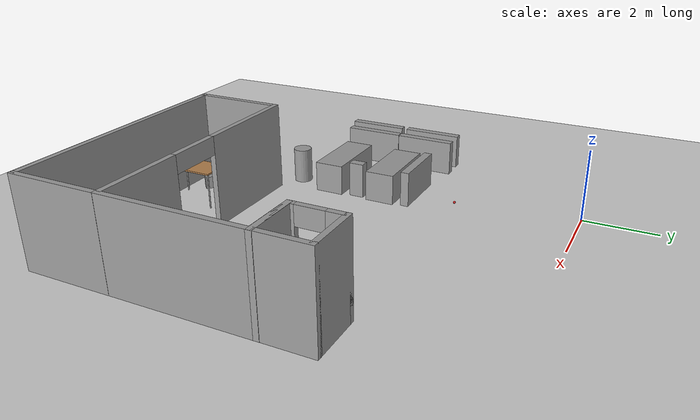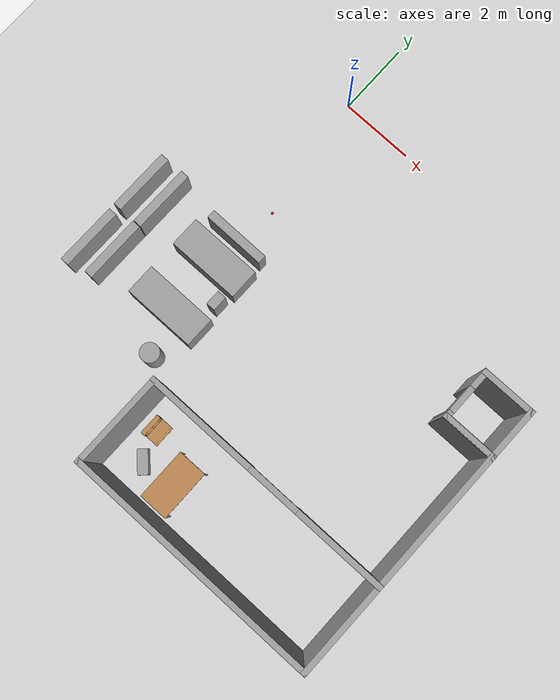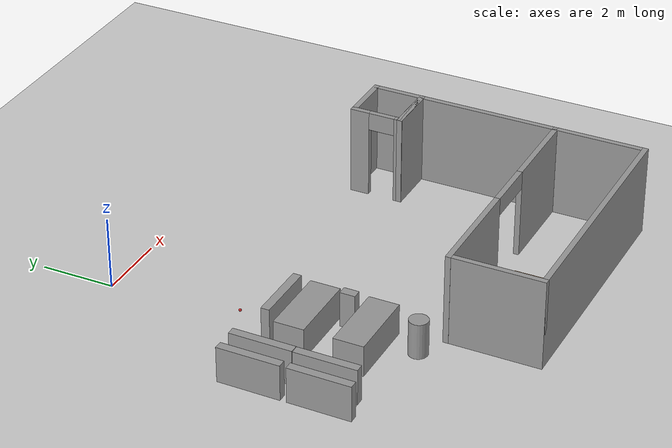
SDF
<sdf version="1.6">
 <world name="default">
  <model name="ground_plane">
   <static>1</static>
   <link name="link">
    <collision name="collision">
     <geometry><plane><normal>0 0 1</normal><size>100 100</size></plane></geometry>
     <surface><friction><ode><mu>100</mu><mu2>50</mu2></ode></friction></surface>
    </collision>
    <visual name="visual">
     <cast_shadows>0</cast_shadows>
     <geometry><plane><normal>0 0 1</normal><size>100 100</size></plane></geometry>
     <material>
      <script><uri>file://media/materials/scripts/gazebo.material</uri><name>Gazebo/Grey</name></script>
     </material>
    </visual>
   </link>
  </model>
  <model name="cma_parede_L">
   <pose>4.97628 -6.69992 0 0 -0 0</pose>
   <link name="Wall_0">
    <pose>0 -1.925 0 0 -0 0</pose>
    <visual name="Wall_0_Visual_0">
     <pose>-1.985 0 1.25 0 -0 0</pose>
     <geometry><box><size>3.03 0.15 2.5</size></box></geometry>
     <material>
      <script><uri>file://media/materials/scripts/gazebo.material</uri><name>Gazebo/Grey</name></script>
      <ambient>1 1 1 1</ambient>
     </material>
    </visual>
    <collision name="Wall_0_Collision_0">
     <geometry><box><size>3.03 0.15 2.5</size></box></geometry>
     <pose>-1.985 0 1.25 0 -0 0</pose>
    </collision>
    <visual name="Wall_0_Visual_1">
     <pose>2.24 0 1.25 0 -0 0</pose>
     <geometry><box><size>2.52 0.15 2.5</size></box></geometry>
     <material>
      <script><uri>file://media/materials/scripts/gazebo.material</uri><name>Gazebo/Grey</name></script>
      <ambient>1 1 1 1</ambient>
     </material>
    </visual>
    <collision name="Wall_0_Collision_1">
     <geometry><box><size>2.52 0.15 2.5</size></box></geometry>
     <pose>2.24 0 1.25 0 -0 0</pose>
    </collision>
    <visual name="Wall_0_Visual_2">
     <pose>0.255 0 2.25 0 -0 0</pose>
     <geometry><box><size>1.45 0.15 0.5</size></box></geometry>
     <material>
      <script><uri>file://media/materials/scripts/gazebo.material</uri><name>Gazebo/Grey</name></script>
      <ambient>1 1 1 1</ambient>
     </material>
    </visual>
    <collision name="Wall_0_Collision_2">
     <geometry><box><size>1.45 0.15 0.5</size></box></geometry>
     <pose>0.255 0 2.25 0 -0 0</pose>
    </collision>
   </link>
   <link name="Wall_1">
    <collision name="Wall_1_Collision">
     <geometry><box><size>4 0.15 2.5</size></box></geometry>
     <pose>0 0 1.25 0 -0 0</pose>
    </collision>
    <visual name="Wall_1_Visual">
     <pose>0 0 1.25 0 -0 0</pose>
     <geometry><box><size>4 0.15 2.5</size></box></geometry>
     <material>
      <script><uri>file://media/materials/scripts/gazebo.material</uri><name>Gazebo/Grey</name></script>
      <ambient>1 1 1 1</ambient>
     </material>
    </visual>
    <pose>3.425 0 0 0 -0 1.5708</pose>
   </link>
   <link name="Wall_2">
    <collision name="Wall_2_Collision">
     <geometry><box><size>1.5 0.15 2.5</size></box></geometry>
     <pose>0 0 1.25 0 -0 0</pose>
    </collision>
    <visual name="Wall_2_Visual">
     <pose>0 0 1.25 0 -0 0</pose>
     <geometry><box><size>1.5 0.15 2.5</size></box></geometry>
     <material>
      <script><uri>file://media/materials/scripts/gazebo.material</uri><name>Gazebo/Grey</name></script>
      <ambient>1 1 1 1</ambient>
     </material>
    </visual>
    <pose>2.75 1.925 0 0 -0 3.14159</pose>
   </link>
   <static>1</static>
  </model>
  <model name="cma_lavabo">
   <pose>7.72297 -4.09302 0 0 -0 0</pose>
   <link name="Wall_4">
    <pose>-0.675 0 0 0 -0 1.5708</pose>
    <visual name="Wall_4_Visual_0">
     <pose>-0.635 0 1.25 0 -0 0</pose>
     <geometry><box><size>0.23 0.15 2.5</size></box></geometry>
     <material>
      <script><uri>file://media/materials/scripts/gazebo.material</uri><name>Gazebo/Grey</name></script>
      <ambient>1 1 1 1</ambient>
     </material>
    </visual>
    <collision name="Wall_4_Collision_0">
     <geometry><box><size>0.23 0.15 2.5</size></box></geometry>
     <pose>-0.635 0 1.25 0 -0 0</pose>
    </collision>
    <visual name="Wall_4_Visual_1">
     <pose>0.48 0 1.25 0 -0 0</pose>
     <geometry><box><size>0.54 0.15 2.5</size></box></geometry>
     <material>
      <script><uri>file://media/materials/scripts/gazebo.material</uri><name>Gazebo/Grey</name></script>
      <ambient>1 1 1 1</ambient>
     </material>
    </visual>
    <collision name="Wall_4_Collision_1">
     <geometry><box><size>0.54 0.15 2.5</size></box></geometry>
     <pose>0.48 0 1.25 0 -0 0</pose>
    </collision>
    <visual name="Wall_4_Visual_2">
     <pose>-0.155 0 2.25 0 -0 0</pose>
     <geometry><box><size>0.73 0.15 0.5</size></box></geometry>
     <material>
      <script><uri>file://media/materials/scripts/gazebo.material</uri><name>Gazebo/Grey</name></script>
      <ambient>1 1 1 1</ambient>
     </material>
    </visual>
    <collision name="Wall_4_Collision_2">
     <geometry><box><size>0.73 0.15 0.5</size></box></geometry>
     <pose>-0.155 0 2.25 0 -0 0</pose>
    </collision>
   </link>
   <link name="Wall_5">
    <collision name="Wall_5_Collision">
     <geometry><box><size>1.5 0.15 2.5</size></box></geometry>
     <pose>0 0 1.25 0 -0 0</pose>
    </collision>
    <visual name="Wall_5_Visual">
     <pose>0 0 1.25 0 -0 0</pose>
     <geometry><box><size>1.5 0.15 2.5</size></box></geometry>
     <material>
      <script><uri>file://media/materials/scripts/gazebo.material</uri><name>Gazebo/Grey</name></script>
      <ambient>1 1 1 1</ambient>
     </material>
    </visual>
    <pose>0 0.675 0 0 -0 0</pose>
   </link>
   <link name="Wall_6">
    <collision name="Wall_6_Collision">
     <geometry><box><size>1.5 0.15 2.5</size></box></geometry>
     <pose>0 0 1.25 0 -0 0</pose>
    </collision>
    <visual name="Wall_6_Visual">
     <pose>0 0 1.25 0 -0 0</pose>
     <geometry><box><size>1.5 0.15 2.5</size></box></geometry>
     <material>
      <script><uri>file://media/materials/scripts/gazebo.material</uri><name>Gazebo/Grey</name></script>
      <ambient>1 1 1 1</ambient>
     </material>
    </visual>
    <pose>0.675 0 0 0 0 -1.5708</pose>
   </link>
   <link name="Wall_7">
    <collision name="Wall_7_Collision">
     <geometry><box><size>1.5 0.15 2.5</size></box></geometry>
     <pose>0 0 1.25 0 -0 0</pose>
    </collision>
    <visual name="Wall_7_Visual">
     <pose>0 0 1.25 0 -0 0</pose>
     <geometry><box><size>1.5 0.15 2.5</size></box></geometry>
     <material>
      <script><uri>file://media/materials/scripts/gazebo.material</uri><name>Gazebo/Grey</name></script>
      <ambient>1 1 1 1</ambient>
     </material>
    </visual>
    <pose>0 -0.675 0 0 -0 3.14159</pose>
   </link>
   <static>1</static>
  </model>
  <model name="cma_U">
   <pose>4.97895 -9.92408 0 0 -0 0</pose>
   <link name="Wall_16">
    <collision name="Wall_16_Collision">
     <geometry><box><size>2.5 0.15 2.5</size></box></geometry>
     <pose>0 0 1.25 0 -0 0</pose>
    </collision>
    <visual name="Wall_16_Visual">
     <pose>0 0 1.25 0 -0 0</pose>
     <geometry><box><size>2.5 0.15 2.5</size></box></geometry>
     <material>
      <script><uri>file://media/materials/scripts/gazebo.material</uri><name>Gazebo/Grey</name></script>
      <ambient>1 1 1 1</ambient>
     </material>
    </visual>
    <pose>-3.425 0 0 0 0 -1.5708</pose>
   </link>
   <link name="Wall_17">
    <collision name="Wall_17_Collision">
     <geometry><box><size>7 0.15 2.5</size></box></geometry>
     <pose>0 0 1.25 0 -0 0</pose>
    </collision>
    <visual name="Wall_17_Visual">
     <pose>0 0 1.25 0 -0 0</pose>
     <geometry><box><size>7 0.15 2.5</size></box></geometry>
     <material>
      <script><uri>file://media/materials/scripts/gazebo.material</uri><name>Gazebo/Grey</name></script>
      <ambient>1 1 1 1</ambient>
     </material>
    </visual>
    <pose>0 -1.175 0 0 -0 0</pose>
   </link>
   <link name="Wall_18">
    <collision name="Wall_18_Collision">
     <geometry><box><size>2.5 0.15 2.5</size></box></geometry>
     <pose>0 0 1.25 0 -0 0</pose>
    </collision>
    <visual name="Wall_18_Visual">
     <pose>0 0 1.25 0 -0 0</pose>
     <geometry><box><size>2.5 0.15 2.5</size></box></geometry>
     <material>
      <script><uri>file://media/materials/scripts/gazebo.material</uri><name>Gazebo/Grey</name></script>
      <ambient>1 1 1 1</ambient>
     </material>
    </visual>
    <pose>3.425 0 0 0 -0 1.5708</pose>
   </link>
   <static>1</static>
  </model>
  <model name="cma_armario_2">
   <link name="link_0">
    <pose>1.32157 0.885178 0.5 0 -0 0</pose>
    <inertial>
     <mass>0.402376</mass>
     <inertia>
      <ixx>0.0353686</ixx>
      <ixy>0</ixy>
      <ixz>0</ixz>
      <iyy>0.132616</iyy>
      <iyz>0</iyz>
      <izz>0.100922</izz>
     </inertia>
    </inertial>
    <visual name="visual">
     <geometry><box><size>1.71877 0.234069 1</size></box></geometry>
     <material>
      <lighting>1</lighting>
      <script><uri>file://media/materials/scripts/gazebo.material</uri><name>Gazebo/Grey</name></script>
      <ambient>0.3 0.3 0.3 1</ambient>
      <diffuse>0.7 0.7 0.7 1</diffuse>
      <specular>0.01 0.01 0.01 1</specular>
      <emissive>0 0 0 1</emissive>
     </material>
    </visual>
    <collision name="collision">
     <geometry><box><size>1.71877 0.234069 1</size></box></geometry>
     <surface>
      <friction>
       <ode><mu>1</mu><mu2>1</mu2><fdir1>0 0 0</fdir1><slip1>0</slip1><slip2>0</slip2></ode>
       <torsional>
        <coefficient>1</coefficient>
        <patch_radius>0</patch_radius>
        <surface_radius>0</surface_radius>
        <use_patch_radius>1</use_patch_radius>
        <ode><slip>0</slip></ode>
       </torsional>
      </friction>
      <bounce><restitution_coefficient>0</restitution_coefficient><threshold>1e+06</threshold></bounce>
      <contact>
       <collide_without_contact>0</collide_without_contact>
       <collide_without_contact_bitmask>1</collide_without_contact_bitmask>
       <collide_bitmask>1</collide_bitmask>
       <ode>
        <soft_cfm>0</soft_cfm>
        <soft_erp>0.2</soft_erp>
        <kp>1e+13</kp>
        <kd>1</kd>
        <max_vel>0.01</max_vel>
        <min_depth>0</min_depth>
       </ode>
       <bullet>
        <split_impulse>1</split_impulse>
        <split_impulse_penetration_threshold>-0.01</split_impulse_penetration_threshold>
        <soft_cfm>0</soft_cfm>
        <soft_erp>0.2</soft_erp>
        <kp>1e+13</kp>
        <kd>1</kd>
       </bullet>
      </contact>
     </surface>
    </collision>
   </link>
   <static>0</static>
   <pose>-1.43698 -6.56212 -2e-06 2e-06 -0 1.56474</pose>
  </model>
  <model name="cma_armario_2_clone">
   <link name="link_0">
    <pose>1.32157 0.885178 0.5 0 -0 0</pose>
    <inertial>
     <mass>0.402376</mass>
     <inertia>
      <ixx>0.0353686</ixx>
      <ixy>0</ixy>
      <ixz>0</ixz>
      <iyy>0.132616</iyy>
      <iyz>0</iyz>
      <izz>0.100922</izz>
     </inertia>
    </inertial>
    <visual name="visual">
     <geometry><box><size>1.71877 0.234069 1</size></box></geometry>
     <material>
      <lighting>1</lighting>
      <script><uri>file://media/materials/scripts/gazebo.material</uri><name>Gazebo/Grey</name></script>
      <ambient>0.3 0.3 0.3 1</ambient>
      <diffuse>0.7 0.7 0.7 1</diffuse>
      <specular>0.01 0.01 0.01 1</specular>
      <emissive>0 0 0 1</emissive>
     </material>
    </visual>
    <collision name="collision">
     <geometry><box><size>1.71877 0.234069 1</size></box></geometry>
     <surface>
      <friction>
       <ode><mu>1</mu><mu2>1</mu2><fdir1>0 0 0</fdir1><slip1>0</slip1><slip2>0</slip2></ode>
       <torsional>
        <coefficient>1</coefficient>
        <patch_radius>0</patch_radius>
        <surface_radius>0</surface_radius>
        <use_patch_radius>1</use_patch_radius>
        <ode><slip>0</slip></ode>
       </torsional>
      </friction>
      <bounce><restitution_coefficient>0</restitution_coefficient><threshold>1e+06</threshold></bounce>
      <contact>
       <collide_without_contact>0</collide_without_contact>
       <collide_without_contact_bitmask>1</collide_without_contact_bitmask>
       <collide_bitmask>1</collide_bitmask>
       <ode>
        <soft_cfm>0</soft_cfm>
        <soft_erp>0.2</soft_erp>
        <kp>1e+13</kp>
        <kd>1</kd>
        <max_vel>0.01</max_vel>
        <min_depth>0</min_depth>
       </ode>
       <bullet>
        <split_impulse>1</split_impulse>
        <split_impulse_penetration_threshold>-0.01</split_impulse_penetration_threshold>
        <soft_cfm>0</soft_cfm>
        <soft_erp>0.2</soft_erp>
        <kp>1e+13</kp>
        <kd>1</kd>
       </bullet>
      </contact>
     </surface>
    </collision>
   </link>
   <static>0</static>
   <pose>-1.44353 -8.44504 -2e-06 2e-06 -0 1.56474</pose>
  </model>
  <model name="cma_cama_s">
   <link name="link_0">
    <pose>-0 2e-06 0 0 -0 0</pose>
    <inertial>
     <mass>1.44546</mass>
     <inertia>
      <ixx>0.173816</ixx>
      <ixy>0</ixy>
      <ixz>0</ixz>
      <iyy>0.575223</iyy>
      <iyz>0</iyz>
      <izz>0.56746</izz>
     </inertia>
    </inertial>
    <visual name="visual">
     <geometry><box><size>2.0054 0.830227 0.868163</size></box></geometry>
     <material>
      <lighting>1</lighting>
      <script><uri>file://media/materials/scripts/gazebo.material</uri><name>Gazebo/Grey</name></script>
      <ambient>0.3 0.3 0.3 1</ambient>
      <diffuse>0.7 0.7 0.7 1</diffuse>
      <specular>0.01 0.01 0.01 1</specular>
      <emissive>0 0 0 1</emissive>
     </material>
    </visual>
    <collision name="collision">
     <geometry><box><size>2.0054 0.830227 0.868163</size></box></geometry>
     <surface>
      <friction>
       <ode><mu>1</mu><mu2>1</mu2><fdir1>0 0 0</fdir1><slip1>0</slip1><slip2>0</slip2></ode>
       <torsional>
        <coefficient>1</coefficient>
        <patch_radius>0</patch_radius>
        <surface_radius>0</surface_radius>
        <use_patch_radius>1</use_patch_radius>
        <ode><slip>0</slip></ode>
       </torsional>
      </friction>
      <bounce><restitution_coefficient>0</restitution_coefficient><threshold>1e+06</threshold></bounce>
      <contact>
       <collide_without_contact>0</collide_without_contact>
       <collide_without_contact_bitmask>1</collide_without_contact_bitmask>
       <collide_bitmask>1</collide_bitmask>
       <ode>
        <soft_cfm>0</soft_cfm>
        <soft_erp>0.2</soft_erp>
        <kp>1e+13</kp>
        <kd>1</kd>
        <max_vel>0.01</max_vel>
        <min_depth>0</min_depth>
       </ode>
       <bullet>
        <split_impulse>1</split_impulse>
        <split_impulse_penetration_threshold>-0.01</split_impulse_penetration_threshold>
        <soft_cfm>0</soft_cfm>
        <soft_erp>0.2</soft_erp>
        <kp>1e+13</kp>
        <kd>1</kd>
       </bullet>
      </contact>
     </surface>
    </collision>
   </link>
   <static>0</static>
   <pose>0.315061 -5.42015 0.434078 1e-06 -4e-06 -2e-06</pose>
  </model>
  <model name="cma_cama_s_0">
   <link name="link_0">
    <pose>-0 2e-06 0 0 -0 0</pose>
    <inertial>
     <mass>1.44546</mass>
     <inertia>
      <ixx>0.173816</ixx>
      <ixy>0</ixy>
      <ixz>0</ixz>
      <iyy>0.575223</iyy>
      <iyz>0</iyz>
      <izz>0.56746</izz>
     </inertia>
    </inertial>
    <visual name="visual">
     <geometry><box><size>2.0054 0.830227 0.868163</size></box></geometry>
     <material>
      <lighting>1</lighting>
      <script><uri>file://media/materials/scripts/gazebo.material</uri><name>Gazebo/Grey</name></script>
      <ambient>0.3 0.3 0.3 1</ambient>
      <diffuse>0.7 0.7 0.7 1</diffuse>
      <specular>0.01 0.01 0.01 1</specular>
      <emissive>0 0 0 1</emissive>
     </material>
    </visual>
    <collision name="collision">
     <geometry><box><size>2.0054 0.830227 0.868163</size></box></geometry>
     <surface>
      <friction>
       <ode><mu>1</mu><mu2>1</mu2><fdir1>0 0 0</fdir1><slip1>0</slip1><slip2>0</slip2></ode>
       <torsional>
        <coefficient>1</coefficient>
        <patch_radius>0</patch_radius>
        <surface_radius>0</surface_radius>
        <use_patch_radius>1</use_patch_radius>
        <ode><slip>0</slip></ode>
       </torsional>
      </friction>
      <bounce><restitution_coefficient>0</restitution_coefficient><threshold>1e+06</threshold></bounce>
      <contact>
       <collide_without_contact>0</collide_without_contact>
       <collide_without_contact_bitmask>1</collide_without_contact_bitmask>
       <collide_bitmask>1</collide_bitmask>
       <ode>
        <soft_cfm>0</soft_cfm>
        <soft_erp>0.2</soft_erp>
        <kp>1e+13</kp>
        <kd>1</kd>
        <max_vel>0.01</max_vel>
        <min_depth>0</min_depth>
       </ode>
       <bullet>
        <split_impulse>1</split_impulse>
        <split_impulse_penetration_threshold>-0.01</split_impulse_penetration_threshold>
        <soft_cfm>0</soft_cfm>
        <soft_erp>0.2</soft_erp>
        <kp>1e+13</kp>
        <kd>1</kd>
       </bullet>
      </contact>
     </surface>
    </collision>
   </link>
   <static>0</static>
   <pose>0.314449 -7.03078 0.434078 -1e-06 4e-06 0</pose>
  </model>
  <model name="cma_picador">
   <link name="link_2">
    <pose>-0.7258 -1.69104 0 0 -0 0</pose>
    <inertial>
     <mass>0.104732</mass>
     <inertia>
      <ixx>0.00927906</ixx>
      <ixy>0</ixy>
      <ixz>0</ixz>
      <iyy>0.010243</iyy>
      <iyz>0</iyz>
      <izz>0.00206672</izz>
     </inertia>
    </inertial>
    <visual name="visual">
     <geometry><box><size>0.416688 0.25134 1</size></box></geometry>
     <material>
      <lighting>1</lighting>
      <script><uri>file://media/materials/scripts/gazebo.material</uri><name>Gazebo/Grey</name></script>
      <ambient>0.3 0.3 0.3 1</ambient>
      <diffuse>0.7 0.7 0.7 1</diffuse>
      <specular>0.01 0.01 0.01 1</specular>
      <emissive>0 0 0 1</emissive>
     </material>
    </visual>
    <collision name="collision">
     <geometry><box><size>0.416688 0.25134 1</size></box></geometry>
     <surface>
      <friction>
       <ode><mu>1</mu><mu2>1</mu2><fdir1>0 0 0</fdir1><slip1>0</slip1><slip2>0</slip2></ode>
       <torsional>
        <coefficient>1</coefficient>
        <patch_radius>0</patch_radius>
        <surface_radius>0</surface_radius>
        <use_patch_radius>1</use_patch_radius>
        <ode><slip>0</slip></ode>
       </torsional>
      </friction>
      <bounce><restitution_coefficient>0</restitution_coefficient><threshold>1e+06</threshold></bounce>
      <contact>
       <collide_without_contact>0</collide_without_contact>
       <collide_without_contact_bitmask>1</collide_without_contact_bitmask>
       <collide_bitmask>1</collide_bitmask>
       <ode>
        <soft_cfm>0</soft_cfm>
        <soft_erp>0.2</soft_erp>
        <kp>1e+13</kp>
        <kd>1</kd>
        <max_vel>0.01</max_vel>
        <min_depth>0</min_depth>
       </ode>
       <bullet>
        <split_impulse>1</split_impulse>
        <split_impulse_penetration_threshold>-0.01</split_impulse_penetration_threshold>
        <soft_cfm>0</soft_cfm>
        <soft_erp>0.2</soft_erp>
        <kp>1e+13</kp>
        <kd>1</kd>
       </bullet>
      </contact>
     </surface>
    </collision>
   </link>
   <static>0</static>
   <pose>-0.5856 -5.45534 0.500004 1e-06 -2e-06 1.56596</pose>
  </model>
  <model name="cma_armario_3">
   <link name="link_0">
    <pose>1.32157 0.885178 0.5 0 -0 0</pose>
    <inertial>
     <mass>0.402376</mass>
     <inertia>
      <ixx>0.0353686</ixx>
      <ixy>0</ixy>
      <ixz>0</ixz>
      <iyy>0.132616</iyy>
      <iyz>0</iyz>
      <izz>0.100922</izz>
     </inertia>
    </inertial>
    <visual name="visual">
     <geometry><box><size>1.71877 0.234069 1</size></box></geometry>
     <material>
      <lighting>1</lighting>
      <script><uri>file://media/materials/scripts/gazebo.material</uri><name>Gazebo/Grey</name></script>
      <ambient>0.3 0.3 0.3 1</ambient>
      <diffuse>0.7 0.7 0.7 1</diffuse>
      <specular>0.01 0.01 0.01 1</specular>
      <emissive>0 0 0 1</emissive>
     </material>
    </visual>
    <collision name="collision">
     <geometry><box><size>1.71877 0.234069 1</size></box></geometry>
     <surface>
      <friction>
       <ode><mu>1</mu><mu2>1</mu2><fdir1>0 0 0</fdir1><slip1>0</slip1><slip2>0</slip2></ode>
       <torsional>
        <coefficient>1</coefficient>
        <patch_radius>0</patch_radius>
        <surface_radius>0</surface_radius>
        <use_patch_radius>1</use_patch_radius>
        <ode><slip>0</slip></ode>
       </torsional>
      </friction>
      <bounce><restitution_coefficient>0</restitution_coefficient><threshold>1e+06</threshold></bounce>
      <contact>
       <collide_without_contact>0</collide_without_contact>
       <collide_without_contact_bitmask>1</collide_without_contact_bitmask>
       <collide_bitmask>1</collide_bitmask>
       <ode>
        <soft_cfm>0</soft_cfm>
        <soft_erp>0.2</soft_erp>
        <kp>1e+13</kp>
        <kd>1</kd>
        <max_vel>0.01</max_vel>
        <min_depth>0</min_depth>
       </ode>
       <bullet>
        <split_impulse>1</split_impulse>
        <split_impulse_penetration_threshold>-0.01</split_impulse_penetration_threshold>
        <soft_cfm>0</soft_cfm>
        <soft_erp>0.2</soft_erp>
        <kp>1e+13</kp>
        <kd>1</kd>
       </bullet>
      </contact>
     </surface>
    </collision>
   </link>
   <static>0</static>
   <pose>-0.943052 -5.55404 0 0 0 -0.004297</pose>
  </model>
  <model name="cma_armario_4">
   <link name="link_0">
    <pose>1.32157 0.885178 0.5 0 -0 0</pose>
    <inertial>
     <mass>0.402376</mass>
     <inertia>
      <ixx>0.0353686</ixx>
      <ixy>0</ixy>
      <ixz>0</ixz>
      <iyy>0.132616</iyy>
      <iyz>0</iyz>
      <izz>0.100922</izz>
     </inertia>
    </inertial>
    <visual name="visual">
     <geometry><box><size>1.71877 0.234069 1</size></box></geometry>
     <material>
      <lighting>1</lighting>
      <script><uri>file://media/materials/scripts/gazebo.material</uri><name>Gazebo/Grey</name></script>
      <ambient>0.3 0.3 0.3 1</ambient>
      <diffuse>0.7 0.7 0.7 1</diffuse>
      <specular>0.01 0.01 0.01 1</specular>
      <emissive>0 0 0 1</emissive>
     </material>
    </visual>
    <collision name="collision">
     <geometry><box><size>1.71877 0.234069 1</size></box></geometry>
     <surface>
      <friction>
       <ode><mu>1</mu><mu2>1</mu2><fdir1>0 0 0</fdir1><slip1>0</slip1><slip2>0</slip2></ode>
       <torsional>
        <coefficient>1</coefficient>
        <patch_radius>0</patch_radius>
        <surface_radius>0</surface_radius>
        <use_patch_radius>1</use_patch_radius>
        <ode><slip>0</slip></ode>
       </torsional>
      </friction>
      <bounce><restitution_coefficient>0</restitution_coefficient><threshold>1e+06</threshold></bounce>
      <contact>
       <collide_without_contact>0</collide_without_contact>
       <collide_without_contact_bitmask>1</collide_without_contact_bitmask>
       <collide_bitmask>1</collide_bitmask>
       <ode>
        <soft_cfm>0</soft_cfm>
        <soft_erp>0.2</soft_erp>
        <kp>1e+13</kp>
        <kd>1</kd>
        <max_vel>0.01</max_vel>
        <min_depth>0</min_depth>
       </ode>
       <bullet>
        <split_impulse>1</split_impulse>
        <split_impulse_penetration_threshold>-0.01</split_impulse_penetration_threshold>
        <soft_cfm>0</soft_cfm>
        <soft_erp>0.2</soft_erp>
        <kp>1e+13</kp>
        <kd>1</kd>
       </bullet>
      </contact>
     </surface>
    </collision>
   </link>
   <static>0</static>
   <pose>-0.77959 -6.54594 -2e-06 2e-06 -0 1.56412</pose>
  </model>
  <model name="cma_armario_5">
   <link name="link_0">
    <pose>1.32157 0.885178 0.5 0 -0 0</pose>
    <inertial>
     <mass>0.402376</mass>
     <inertia>
      <ixx>0.0353686</ixx>
      <ixy>0</ixy>
      <ixz>0</ixz>
      <iyy>0.132616</iyy>
      <iyz>0</iyz>
      <izz>0.100922</izz>
     </inertia>
    </inertial>
    <visual name="visual">
     <geometry><box><size>1.71877 0.234069 1</size></box></geometry>
     <material>
      <lighting>1</lighting>
      <script><uri>file://media/materials/scripts/gazebo.material</uri><name>Gazebo/Grey</name></script>
      <ambient>0.3 0.3 0.3 1</ambient>
      <diffuse>0.7 0.7 0.7 1</diffuse>
      <specular>0.01 0.01 0.01 1</specular>
      <emissive>0 0 0 1</emissive>
     </material>
    </visual>
    <collision name="collision">
     <geometry><box><size>1.71877 0.234069 1</size></box></geometry>
     <surface>
      <friction>
       <ode><mu>1</mu><mu2>1</mu2><fdir1>0 0 0</fdir1><slip1>0</slip1><slip2>0</slip2></ode>
       <torsional>
        <coefficient>1</coefficient>
        <patch_radius>0</patch_radius>
        <surface_radius>0</surface_radius>
        <use_patch_radius>1</use_patch_radius>
        <ode><slip>0</slip></ode>
       </torsional>
      </friction>
      <bounce><restitution_coefficient>0</restitution_coefficient><threshold>1e+06</threshold></bounce>
      <contact>
       <collide_without_contact>0</collide_without_contact>
       <collide_without_contact_bitmask>1</collide_without_contact_bitmask>
       <collide_bitmask>1</collide_bitmask>
       <ode>
        <soft_cfm>0</soft_cfm>
        <soft_erp>0.2</soft_erp>
        <kp>1e+13</kp>
        <kd>1</kd>
        <max_vel>0.01</max_vel>
        <min_depth>0</min_depth>
       </ode>
       <bullet>
        <split_impulse>1</split_impulse>
        <split_impulse_penetration_threshold>-0.01</split_impulse_penetration_threshold>
        <soft_cfm>0</soft_cfm>
        <soft_erp>0.2</soft_erp>
        <kp>1e+13</kp>
        <kd>1</kd>
       </bullet>
      </contact>
     </surface>
    </collision>
   </link>
   <static>0</static>
   <pose>-0.788108 -8.27707 -2e-06 2e-06 -0 1.56877</pose>
  </model>
  <model name="cma_cesto_0">
   <link name="link_1">
    <pose>-0.329659 -1.55494 0 0 -0 0</pose>
    <inertial>
     <mass>0.267897</mass>
     <inertia>
      <ixx>0.0268102</ixx>
      <ixy>0</ixy>
      <ixz>0</ixz>
      <iyy>0.0268102</iyy>
      <iyz>0</iyz>
      <izz>0.00897111</izz>
     </inertia>
    </inertial>
    <visual name="visual">
     <geometry><cylinder><radius>0.258792</radius><length>1</length></cylinder></geometry>
     <material>
      <lighting>1</lighting>
      <script><uri>file://media/materials/scripts/gazebo.material</uri><name>Gazebo/Grey</name></script>
      <ambient>0.3 0.3 0.3 1</ambient>
      <diffuse>0.7 0.7 0.7 1</diffuse>
      <specular>0.01 0.01 0.01 1</specular>
      <emissive>0 0 0 1</emissive>
     </material>
    </visual>
    <collision name="collision">
     <geometry><cylinder><radius>0.258792</radius><length>1</length></cylinder></geometry>
     <surface>
      <friction>
       <ode><mu>1</mu><mu2>1</mu2><fdir1>0 0 0</fdir1><slip1>0</slip1><slip2>0</slip2></ode>
       <torsional>
        <coefficient>1</coefficient>
        <patch_radius>0</patch_radius>
        <surface_radius>0</surface_radius>
        <use_patch_radius>1</use_patch_radius>
        <ode><slip>0</slip></ode>
       </torsional>
      </friction>
      <bounce><restitution_coefficient>0</restitution_coefficient><threshold>1e+06</threshold></bounce>
      <contact>
       <collide_without_contact>0</collide_without_contact>
       <collide_without_contact_bitmask>1</collide_without_contact_bitmask>
       <collide_bitmask>1</collide_bitmask>
       <ode>
        <soft_cfm>0</soft_cfm>
        <soft_erp>0.2</soft_erp>
        <kp>1e+13</kp>
        <kd>1</kd>
        <max_vel>0.01</max_vel>
        <min_depth>0</min_depth>
       </ode>
       <bullet>
        <split_impulse>1</split_impulse>
        <split_impulse_penetration_threshold>-0.01</split_impulse_penetration_threshold>
        <soft_cfm>0</soft_cfm>
        <soft_erp>0.2</soft_erp>
        <kp>1e+13</kp>
        <kd>1</kd>
       </bullet>
      </contact>
     </surface>
    </collision>
   </link>
   <static>0</static>
   <pose>1.10203 -6.65937 0.499991 0 -0 0</pose>
  </model>
  <model name="cma_barra_70cmD">
   <link name="link_2">
    <pose>3.79375 1.34046 0.5 0 0 -0.803534</pose>
    <inertial>
     <mass>0.0631368</mass>
     <inertia>
      <ixx>0.00106542</ixx>
      <ixy>0</ixy>
      <ixz>0</ixz>
      <iyy>0.00284727</iyy>
      <iyz>0</iyz>
      <izz>0.0025815</izz>
     </inertia>
    </inertial>
    <visual name="visual">
     <geometry><box><size>0.643938 0.275728 0.355737</size></box></geometry>
     <material>
      <lighting>1</lighting>
      <script><uri>file://media/materials/scripts/gazebo.material</uri><name>Gazebo/Grey</name></script>
      <ambient>0.3 0.3 0.3 1</ambient>
      <diffuse>0.7 0.7 0.7 1</diffuse>
      <specular>0.01 0.01 0.01 1</specular>
      <emissive>0 0 0 1</emissive>
     </material>
    </visual>
    <collision name="collision">
     <geometry><box><size>0.643938 0.275728 0.355737</size></box></geometry>
     <surface>
      <friction>
       <ode><mu>1</mu><mu2>1</mu2><fdir1>0 0 0</fdir1><slip1>0</slip1><slip2>0</slip2></ode>
       <torsional>
        <coefficient>1</coefficient>
        <patch_radius>0</patch_radius>
        <surface_radius>0</surface_radius>
        <use_patch_radius>1</use_patch_radius>
        <ode><slip>0</slip></ode>
       </torsional>
      </friction>
      <bounce><restitution_coefficient>0</restitution_coefficient><threshold>1e+06</threshold></bounce>
      <contact>
       <collide_without_contact>0</collide_without_contact>
       <collide_without_contact_bitmask>1</collide_without_contact_bitmask>
       <collide_bitmask>1</collide_bitmask>
       <ode>
        <soft_cfm>0</soft_cfm>
        <soft_erp>0.2</soft_erp>
        <kp>1e+13</kp>
        <kd>1</kd>
        <max_vel>0.01</max_vel>
        <min_depth>0</min_depth>
       </ode>
       <bullet>
        <split_impulse>1</split_impulse>
        <split_impulse_penetration_threshold>-0.01</split_impulse_penetration_threshold>
        <soft_cfm>0</soft_cfm>
        <soft_erp>0.2</soft_erp>
        <kp>1e+13</kp>
        <kd>1</kd>
       </bullet>
      </contact>
     </surface>
    </collision>
   </link>
   <static>0</static>
   <pose>-1.41056 -11.6533 -0.322169 3e-06 -7e-06 0.005529</pose>
  </model>
  <model name="cricket_ball">
   <link name="link">
    <pose>0 0 0.0375 0 -0 0</pose>
    <inertial>
     <mass>0.1467</mass>
     <inertia>
      <ixx>8.25187e-05</ixx>
      <ixy>0</ixy>
      <ixz>0</ixz>
      <iyy>8.25187e-05</iyy>
      <iyz>0</iyz>
      <izz>8.25187e-05</izz>
     </inertia>
    </inertial>
    <collision name="collision">
     <geometry><sphere><radius>0.0375</radius></sphere></geometry>
     <surface>
      <contact>
       <poissons_ratio>0.347</poissons_ratio>
       <elastic_modulus>8.8e+09</elastic_modulus>
       <ode><kp>100000</kp><kd>100</kd><max_vel>100</max_vel><min_depth>0.001</min_depth></ode>
      </contact>
      <friction>
       <torsional>
        <coefficient>1</coefficient>
        <use_patch_radius>0</use_patch_radius>
        <surface_radius>0.01</surface_radius>
       </torsional>
      </friction>
     </surface>
    </collision>
    <visual name="visual">
     <geometry><sphere><radius>0.0375</radius></sphere></geometry>
     <material>
      <script><uri>file://media/materials/scripts/gazebo.material</uri><name>Gazebo/Red</name></script>
     </material>
    </visual>
    <velocity_decay><linear>0</linear><angular>0.005</angular></velocity_decay>
   </link>
   <pose>0.462312 -3.46046 -0.001014 0 -0 0</pose>
  </model>
  <model name="table">
   <static>0</static>
   <link name="link">
    <collision name="surface">
     <pose>0 0 1 0 -0 0</pose>
     <geometry><box><size>1.5 0.8 0.03</size></box></geometry>
     <surface><friction><ode><mu>0.6</mu><mu2>0.6</mu2></ode></friction></surface>
    </collision>
    <visual name="visual1">
     <pose>0 0 1 0 -0 0</pose>
     <geometry><box><size>1.4 0.8 0.04</size></box></geometry>
     <material>
      <script><uri>file://media/materials/scripts/gazebo.material</uri><name>Gazebo/Wood</name></script>
     </material>
    </visual>
    <collision name="front_left_leg">
     <pose>0.68 0.38 0.5 0 -0 0</pose>
     <geometry><cylinder><radius>0.02</radius><length>1</length></cylinder></geometry>
    </collision>
    <visual name="front_left_leg">
     <pose>0.68 0.38 0.5 0 -0 0</pose>
     <geometry><cylinder><radius>0.02</radius><length>1</length></cylinder></geometry>
     <material>
      <script><uri>file://media/materials/scripts/gazebo.material</uri><name>Gazebo/Grey</name></script>
     </material>
    </visual>
    <collision name="front_right_leg">
     <pose>0.68 -0.38 0.5 0 -0 0</pose>
     <geometry><cylinder><radius>0.02</radius><length>1</length></cylinder></geometry>
    </collision>
    <visual name="front_right_leg">
     <pose>0.68 -0.38 0.5 0 -0 0</pose>
     <geometry><cylinder><radius>0.02</radius><length>1</length></cylinder></geometry>
     <material>
      <script><uri>file://media/materials/scripts/gazebo.material</uri><name>Gazebo/Grey</name></script>
     </material>
    </visual>
    <collision name="back_right_leg">
     <pose>-0.68 -0.38 0.5 0 -0 0</pose>
     <geometry><cylinder><radius>0.02</radius><length>1</length></cylinder></geometry>
    </collision>
    <visual name="back_right_leg">
     <pose>-0.68 -0.38 0.5 0 -0 0</pose>
     <geometry><cylinder><radius>0.02</radius><length>1</length></cylinder></geometry>
     <material>
      <script><uri>file://media/materials/scripts/gazebo.material</uri><name>Gazebo/Grey</name></script>
     </material>
    </visual>
    <collision name="back_left_leg">
     <pose>-0.68 0.38 0.5 0 -0 0</pose>
     <geometry><cylinder><radius>0.02</radius><length>1</length></cylinder></geometry>
    </collision>
    <visual name="back_left_leg">
     <pose>-0.68 0.38 0.5 0 -0 0</pose>
     <geometry><cylinder><radius>0.02</radius><length>1</length></cylinder></geometry>
     <material>
      <script><uri>file://media/materials/scripts/gazebo.material</uri><name>Gazebo/Grey</name></script>
     </material>
    </visual>
    <inertial>
     <inertia><ixx>1</ixx><ixy>0</ixy><ixz>0</ixz><iyy>1</iyy><iyz>0</iyz><izz>1</izz></inertia>
     <mass>1</mass>
    </inertial>
   </link>
   <pose>3.36585 -10.1629 -9e-06 0 -1e-06 -1.56561</pose>
  </model>
  <model name="wooden_case">
   <link name="base">
    <pose>0 0 0.024 0 -0 0</pose>
    <inertial>
     <pose>-0.022184 0 0.171592 0 -0 0</pose>
     <mass>3.96264</mass>
     <inertia>
      <ixx>0.213536</ixx>
      <ixy>0</ixy>
      <ixz>0.000779377</ixz>
      <iyy>0.0708943</iyy>
      <iyz>0</iyz>
      <izz>0.154604</izz>
     </inertia>
    </inertial>
    <collision name="collision_back">
     <pose>-0.053975 0 0.1778 0 -0 0</pose>
     <geometry><box><size>0.01905 0.5461 0.3175</size></box></geometry>
     <surface>
      <contact>
       <poissons_ratio>0.347</poissons_ratio>
       <elastic_modulus>8.8e+09</elastic_modulus>
       <ode><kp>100000</kp><kd>100</kd><max_vel>100</max_vel><min_depth>0.001</min_depth></ode>
      </contact>
      <friction>
       <torsional>
        <coefficient>1</coefficient>
        <use_patch_radius>0</use_patch_radius>
        <surface_radius>0.01</surface_radius>
       </torsional>
      </friction>
     </surface>
    </collision>
    <visual name="visual_back">
     <pose>-0.053975 0 0.1778 0 -0 0</pose>
     <geometry><box><size>0.01905 0.5461 0.3175</size></box></geometry>
     <material>
      <script><uri>file://media/materials/scripts/gazebo.material</uri><name>Gazebo/Wood</name></script>
     </material>
    </visual>
    <collision name="collision_bottom">
     <pose>0 0 0.009525 0 -0 0</pose>
     <geometry><box><size>0.127 0.5842 0.01905</size></box></geometry>
     <surface>
      <contact>
       <poissons_ratio>0.347</poissons_ratio>
       <elastic_modulus>8.8e+09</elastic_modulus>
       <ode><kp>100000</kp><kd>100</kd><max_vel>100</max_vel><min_depth>0.001</min_depth></ode>
      </contact>
      <friction>
       <torsional>
        <coefficient>1</coefficient>
        <use_patch_radius>0</use_patch_radius>
        <surface_radius>0.01</surface_radius>
       </torsional>
      </friction>
     </surface>
    </collision>
    <visual name="visual_bottom">
     <pose>0 0 0.009525 0 -0 0</pose>
     <geometry><box><size>0.127 0.5842 0.01905</size></box></geometry>
     <material>
      <script><uri>file://media/materials/scripts/gazebo.material</uri><name>Gazebo/Wood</name></script>
     </material>
    </visual>
    <collision name="collision_top">
     <pose>0 0 0.346075 0 -0 0</pose>
     <geometry><box><size>0.127 0.5842 0.01905</size></box></geometry>
     <surface>
      <contact>
       <poissons_ratio>0.347</poissons_ratio>
       <elastic_modulus>8.8e+09</elastic_modulus>
       <ode><kp>100000</kp><kd>100</kd><max_vel>100</max_vel><min_depth>0.001</min_depth></ode>
      </contact>
      <friction>
       <torsional>
        <coefficient>1</coefficient>
        <use_patch_radius>0</use_patch_radius>
        <surface_radius>0.01</surface_radius>
       </torsional>
      </friction>
     </surface>
    </collision>
    <visual name="visual_top">
     <pose>0 0 0.346075 0 -0 0</pose>
     <geometry><box><size>0.127 0.5842 0.01905</size></box></geometry>
     <material>
      <script><uri>file://media/materials/scripts/gazebo.material</uri><name>Gazebo/Wood</name></script>
     </material>
    </visual>
    <collision name="collision_left">
     <pose>0 -0.282575 0.1778 0 -0 0</pose>
     <geometry><box><size>0.127 0.01905 0.3175</size></box></geometry>
     <surface>
      <contact>
       <poissons_ratio>0.347</poissons_ratio>
       <elastic_modulus>8.8e+09</elastic_modulus>
       <ode><kp>100000</kp><kd>100</kd><max_vel>100</max_vel><min_depth>0.001</min_depth></ode>
      </contact>
      <friction>
       <torsional>
        <coefficient>1</coefficient>
        <use_patch_radius>0</use_patch_radius>
        <surface_radius>0.01</surface_radius>
       </torsional>
      </friction>
     </surface>
    </collision>
    <visual name="visual_left">
     <pose>0 -0.282575 0.1778 0 -0 0</pose>
     <geometry><box><size>0.127 0.01905 0.3175</size></box></geometry>
     <material>
      <script><uri>file://media/materials/scripts/gazebo.material</uri><name>Gazebo/Wood</name></script>
     </material>
    </visual>
    <collision name="collision_right">
     <pose>0 0.282575 0.1778 0 -0 0</pose>
     <geometry><box><size>0.127 0.01905 0.3175</size></box></geometry>
     <surface>
      <contact>
       <poissons_ratio>0.347</poissons_ratio>
       <elastic_modulus>8.8e+09</elastic_modulus>
       <ode><kp>100000</kp><kd>100</kd><max_vel>100</max_vel><min_depth>0.001</min_depth></ode>
      </contact>
      <friction>
       <torsional>
        <coefficient>1</coefficient>
        <use_patch_radius>0</use_patch_radius>
        <surface_radius>0.01</surface_radius>
       </torsional>
      </friction>
     </surface>
    </collision>
    <visual name="visual_right">
     <pose>0 0.282575 0.1778 0 -0 0</pose>
     <geometry><box><size>0.127 0.01905 0.3175</size></box></geometry>
     <material>
      <script><uri>file://media/materials/scripts/gazebo.material</uri><name>Gazebo/Wood</name></script>
     </material>
    </visual>
    <collision name="collision_block_left">
     <pose>0.0095 -0.2151 -0.012 0 -0 0</pose>
     <geometry><box><size>0.108 0.05 0.024</size></box></geometry>
     <surface>
      <contact>
       <poissons_ratio>0.347</poissons_ratio>
       <elastic_modulus>8.8e+09</elastic_modulus>
       <ode><kp>100000</kp><kd>100</kd><max_vel>100</max_vel><min_depth>0.001</min_depth></ode>
      </contact>
      <friction>
       <torsional>
        <coefficient>1</coefficient>
        <use_patch_radius>0</use_patch_radius>
        <surface_radius>0.01</surface_radius>
       </torsional>
      </friction>
     </surface>
    </collision>
    <visual name="visual_block_left">
     <pose>0.0095 -0.2151 -0.012 0 -0 0</pose>
     <geometry><box><size>0.108 0.05 0.024</size></box></geometry>
     <material>
      <script><uri>file://media/materials/scripts/gazebo.material</uri><name>Gazebo/Wood</name></script>
     </material>
    </visual>
    <collision name="collision_block_right">
     <pose>0.0095 0.2151 -0.012 0 -0 0</pose>
     <geometry><box><size>0.108 0.05 0.024</size></box></geometry>
     <surface>
      <contact>
       <poissons_ratio>0.347</poissons_ratio>
       <elastic_modulus>8.8e+09</elastic_modulus>
       <ode><kp>100000</kp><kd>100</kd><max_vel>100</max_vel><min_depth>0.001</min_depth></ode>
      </contact>
      <friction>
       <torsional>
        <coefficient>1</coefficient>
        <use_patch_radius>0</use_patch_radius>
        <surface_radius>0.01</surface_radius>
       </torsional>
      </friction>
     </surface>
    </collision>
    <visual name="visual_block_right">
     <pose>0.0095 0.2151 -0.012 0 -0 0</pose>
     <geometry><box><size>0.108 0.05 0.024</size></box></geometry>
     <material>
      <script><uri>file://media/materials/scripts/gazebo.material</uri><name>Gazebo/Wood</name></script>
     </material>
    </visual>
   </link>
   <link name="lid">
    <pose>0.243775 0 0.009525 0 -0 0</pose>
    <inertial>
     <mass>1.97874</mass>
     <inertia>
      <ixx>0.0563367</ixx>
      <ixy>0</ixy>
      <ixz>0</ixz>
      <iyy>0.020911</iyy>
      <iyz>0</iyz>
      <izz>0.0771281</izz>
     </inertia>
    </inertial>
    <collision name="collision">
     <geometry><box><size>0.3556 0.5842 0.01905</size></box></geometry>
     <surface>
      <contact>
       <poissons_ratio>0.347</poissons_ratio>
       <elastic_modulus>8.8e+09</elastic_modulus>
       <ode><kp>100000</kp><kd>100</kd><max_vel>100</max_vel><min_depth>0.001</min_depth></ode>
      </contact>
      <friction>
       <torsional>
        <coefficient>1</coefficient>
        <use_patch_radius>0</use_patch_radius>
        <surface_radius>0.01</surface_radius>
       </torsional>
      </friction>
     </surface>
    </collision>
    <visual name="visual">
     <geometry><box><size>0.3556 0.5842 0.01905</size></box></geometry>
     <material>
      <script><uri>file://media/materials/scripts/gazebo.material</uri><name>Gazebo/Wood</name></script>
     </material>
    </visual>
    <visual name="tee_nut_1">
     <pose>0.122 -0.216 0 0 -0 0</pose>
     <geometry><cylinder><radius>0.00635</radius><length>0.0192405</length></cylinder></geometry>
     <material>
      <script><uri>file://media/materials/scripts/gazebo.material</uri><name>Gazebo/Grey</name></script>
     </material>
    </visual>
    <visual name="tee_nut_2">
     <pose>0.122 -0.088 0 0 -0 0</pose>
     <geometry><cylinder><radius>0.00635</radius><length>0.0192405</length></cylinder></geometry>
     <material>
      <script><uri>file://media/materials/scripts/gazebo.material</uri><name>Gazebo/Grey</name></script>
     </material>
    </visual>
    <visual name="tee_nut_3">
     <pose>0.122 0.088 0 0 -0 0</pose>
     <geometry><cylinder><radius>0.00635</radius><length>0.0192405</length></cylinder></geometry>
     <material>
      <script><uri>file://media/materials/scripts/gazebo.material</uri><name>Gazebo/Grey</name></script>
     </material>
    </visual>
    <visual name="tee_nut_4">
     <pose>0.122 0.216 0 0 -0 0</pose>
     <geometry><cylinder><radius>0.00635</radius><length>0.0192405</length></cylinder></geometry>
     <material>
      <script><uri>file://media/materials/scripts/gazebo.material</uri><name>Gazebo/Grey</name></script>
     </material>
    </visual>
   </link>
   <joint name="lid_hinge" type="revolute">
    <pose>-0.1778 0 0.01905 0 -0 0</pose>
    <parent>base</parent>
    <child>lid</child>
    <axis>
     <xyz>0 1 0</xyz>
     <limit><upper>0.523599</upper><lower>-1.5708</lower></limit>
     <use_parent_model_frame>0</use_parent_model_frame>
     <dynamics><spring_reference>0</spring_reference><spring_stiffness>0</spring_stiffness></dynamics>
    </axis>
   </joint>
   <pose>1.91376 -9.50403 -0.001057 0 -0.000424 -1e-06</pose>
  </model>
 </world>
</sdf>
